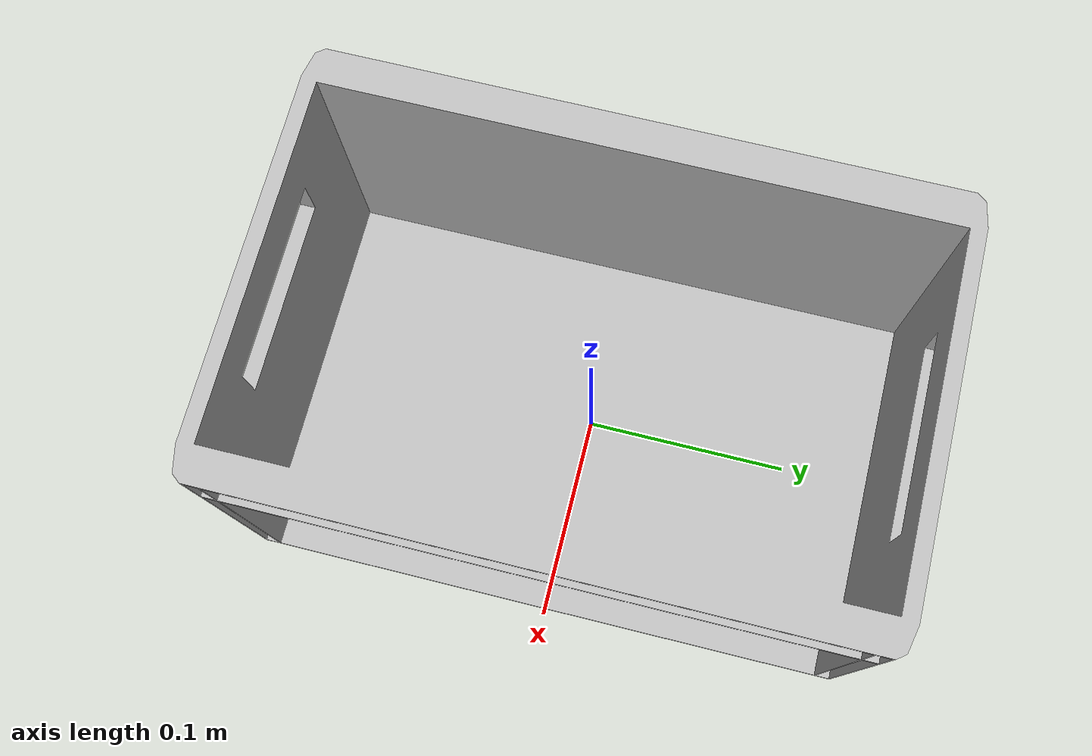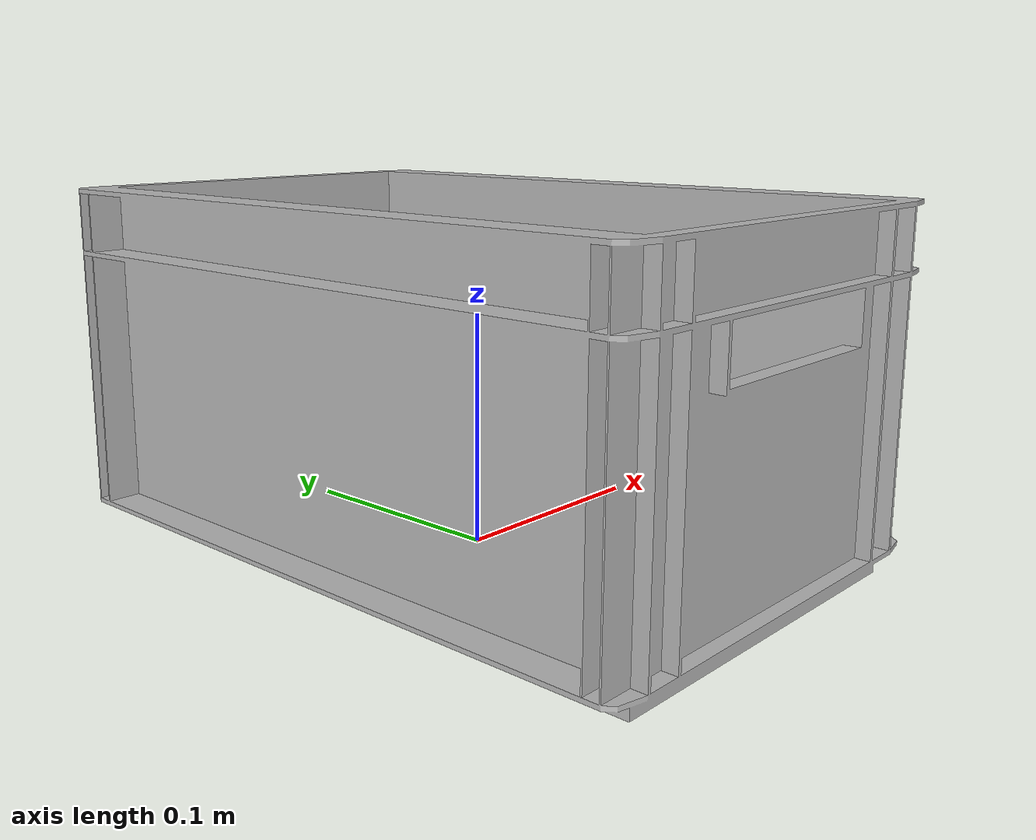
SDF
<?xml version="1.0"?>
<sdf version="1.4">

  <model name="European container Type A">

    <static>false</static>

    <link name="container_structure">

      <pose>0 0 0 0 0 0</pose>

      <collision name="container_collision">
        <geometry>
                <box>
                  <size>.20 .30 .15</size>
                </box>
        </geometry>
      </collision>

      <visual name="container_visual">
        <geometry>
          <mesh>
            <uri>model://eurocontainer_A/meshes/EuroContainer_A.dae</uri>
          </mesh>
        </geometry>

      </visual>

    </link>

  </model>
</sdf>
